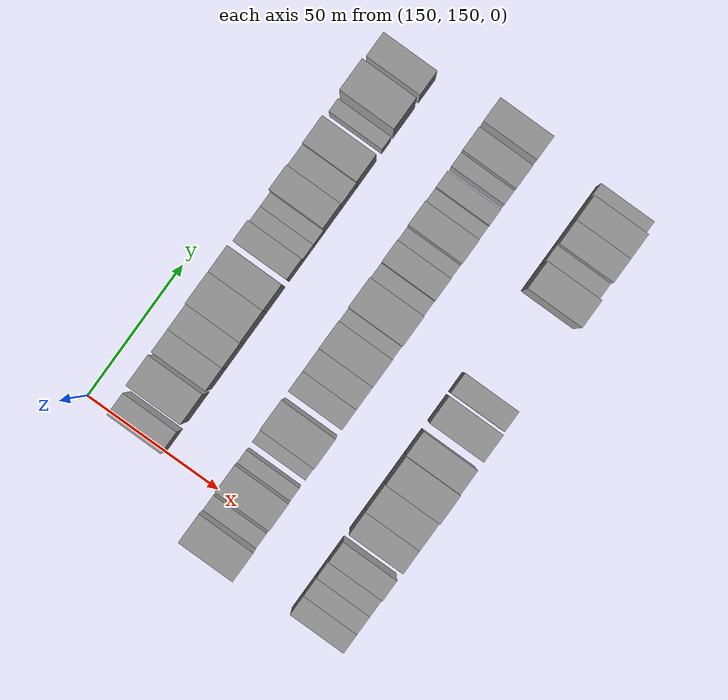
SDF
<sdf version="1.6">
 <world name="default">
  <model name="building_491">
   <static>1</static>
   <pose>170.0000 154.7294 0 0.000000 0.000000 0.000000</pose>
   <link name="link">
    <pose>0 0 9.00 0 0 0</pose>
    <collision name="collision"><geometry><box><size>20.0000 8.1048 18.0000</size></box></geometry></collision>
    <visual name="visual">
     <cast_shadows>0</cast_shadows>
     <geometry><box><size>20.0000 8.1048 18.0000</size></box></geometry>
     <material>
      <script>
       <uri>model://grey_wall/materials/scripts</uri>
       <uri>model://grey_wall/materials/textures</uri>
       <name>vrc/grey_wall</name>
      </script>
     </material>
    </visual>
   </link>
  </model>
  <model name="building_492">
   <static>1</static>
   <pose>170.0000 167.3906 0 0.000000 0.000000 0.000000</pose>
   <link name="link">
    <pose>0 0 12.00 0 0 0</pose>
    <collision name="collision"><geometry><box><size>20.0000 11.2178 24.0000</size></box></geometry></collision>
    <visual name="visual">
     <cast_shadows>0</cast_shadows>
     <geometry><box><size>20.0000 11.2178 24.0000</size></box></geometry>
     <material>
      <script>
       <uri>model://grey_wall/materials/scripts</uri>
       <uri>model://grey_wall/materials/textures</uri>
       <name>vrc/grey_wall</name>
      </script>
     </material>
    </visual>
   </link>
  </model>
  <model name="building_493">
   <static>1</static>
   <pose>170.0000 178.2123 0 0.000000 0.000000 0.000000</pose>
   <link name="link">
    <pose>0 0 10.50 0 0 0</pose>
    <collision name="collision"><geometry><box><size>20.0000 8.4255 21.0000</size></box></geometry></collision>
    <visual name="visual">
     <cast_shadows>0</cast_shadows>
     <geometry><box><size>20.0000 8.4255 21.0000</size></box></geometry>
     <material>
      <script>
       <uri>model://grey_wall/materials/scripts</uri>
       <uri>model://grey_wall/materials/textures</uri>
       <name>vrc/grey_wall</name>
      </script>
     </material>
    </visual>
   </link>
  </model>
  <model name="building_494">
   <static>1</static>
   <pose>170.0000 187.1427 0 0.000000 0.000000 0.000000</pose>
   <link name="link">
    <pose>0 0 10.50 0 0 0</pose>
    <collision name="collision"><geometry><box><size>20.0000 9.4354 21.0000</size></box></geometry></collision>
    <visual name="visual">
     <cast_shadows>0</cast_shadows>
     <geometry><box><size>20.0000 9.4354 21.0000</size></box></geometry>
     <material>
      <script>
       <uri>model://grey_wall/materials/scripts</uri>
       <uri>model://grey_wall/materials/textures</uri>
       <name>vrc/grey_wall</name>
      </script>
     </material>
    </visual>
   </link>
  </model>
  <model name="building_495">
   <static>1</static>
   <pose>170.0000 197.7175 0 0.000000 0.000000 0.000000</pose>
   <link name="link">
    <pose>0 0 12.00 0 0 0</pose>
    <collision name="collision"><geometry><box><size>20.0000 11.7142 24.0000</size></box></geometry></collision>
    <visual name="visual">
     <cast_shadows>0</cast_shadows>
     <geometry><box><size>20.0000 11.7142 24.0000</size></box></geometry>
     <material>
      <script>
       <uri>model://grey_wall/materials/scripts</uri>
       <uri>model://grey_wall/materials/textures</uri>
       <name>vrc/grey_wall</name>
      </script>
     </material>
    </visual>
   </link>
  </model>
  <model name="building_496">
   <static>1</static>
   <pose>170.0000 208.4007 0 0.000000 0.000000 0.000000</pose>
   <link name="link">
    <pose>0 0 12.00 0 0 0</pose>
    <collision name="collision"><geometry><box><size>20.0000 9.6523 24.0000</size></box></geometry></collision>
    <visual name="visual">
     <cast_shadows>0</cast_shadows>
     <geometry><box><size>20.0000 9.6523 24.0000</size></box></geometry>
     <material>
      <script>
       <uri>model://grey_wall/materials/scripts</uri>
       <uri>model://grey_wall/materials/textures</uri>
       <name>vrc/grey_wall</name>
      </script>
     </material>
    </visual>
   </link>
  </model>
  <model name="building_497">
   <static>1</static>
   <pose>170.0000 219.1140 0 0.000000 0.000000 0.000000</pose>
   <link name="link">
    <pose>0 0 9.00 0 0 0</pose>
    <collision name="collision"><geometry><box><size>20.0000 7.7743 18.0000</size></box></geometry></collision>
    <visual name="visual">
     <cast_shadows>0</cast_shadows>
     <geometry><box><size>20.0000 7.7743 18.0000</size></box></geometry>
     <material>
      <script>
       <uri>model://grey_wall/materials/scripts</uri>
       <uri>model://grey_wall/materials/textures</uri>
       <name>vrc/grey_wall</name>
      </script>
     </material>
    </visual>
   </link>
  </model>
  <model name="building_498">
   <static>1</static>
   <pose>170.0000 225.8451 0 0.000000 0.000000 0.000000</pose>
   <link name="link">
    <pose>0 0 6.00 0 0 0</pose>
    <collision name="collision"><geometry><box><size>20.0000 5.6880 12.0000</size></box></geometry></collision>
    <visual name="visual">
     <cast_shadows>0</cast_shadows>
     <geometry><box><size>20.0000 5.6880 12.0000</size></box></geometry>
     <material>
      <script>
       <uri>model://grey_wall/materials/scripts</uri>
       <uri>model://grey_wall/materials/textures</uri>
       <name>vrc/grey_wall</name>
      </script>
     </material>
    </visual>
   </link>
  </model>
  <model name="building_499">
   <static>1</static>
   <pose>170.0000 231.3426 0 0.000000 0.000000 0.000000</pose>
   <link name="link">
    <pose>0 0 6.00 0 0 0</pose>
    <collision name="collision"><geometry><box><size>20.0000 5.3070 12.0000</size></box></geometry></collision>
    <visual name="visual">
     <cast_shadows>0</cast_shadows>
     <geometry><box><size>20.0000 5.3070 12.0000</size></box></geometry>
     <material>
      <script>
       <uri>model://grey_wall/materials/scripts</uri>
       <uri>model://grey_wall/materials/textures</uri>
       <name>vrc/grey_wall</name>
      </script>
     </material>
    </visual>
   </link>
  </model>
  <model name="building_500">
   <static>1</static>
   <pose>170.0000 238.5682 0 0.000000 0.000000 0.000000</pose>
   <link name="link">
    <pose>0 0 10.50 0 0 0</pose>
    <collision name="collision"><geometry><box><size>20.0000 9.1442 21.0000</size></box></geometry></collision>
    <visual name="visual">
     <cast_shadows>0</cast_shadows>
     <geometry><box><size>20.0000 9.1442 21.0000</size></box></geometry>
     <material>
      <script>
       <uri>model://grey_wall/materials/scripts</uri>
       <uri>model://grey_wall/materials/textures</uri>
       <name>vrc/grey_wall</name>
      </script>
     </material>
    </visual>
   </link>
  </model>
  <model name="building_501">
   <static>1</static>
   <pose>170.0000 247.1421 0 0.000000 0.000000 0.000000</pose>
   <link name="link">
    <pose>0 0 9.00 0 0 0</pose>
    <collision name="collision"><geometry><box><size>20.0000 8.0035 18.0000</size></box></geometry></collision>
    <visual name="visual">
     <cast_shadows>0</cast_shadows>
     <geometry><box><size>20.0000 8.0035 18.0000</size></box></geometry>
     <material>
      <script>
       <uri>model://grey_wall/materials/scripts</uri>
       <uri>model://grey_wall/materials/textures</uri>
       <name>vrc/grey_wall</name>
      </script>
     </material>
    </visual>
   </link>
  </model>
  <model name="building_502">
   <static>1</static>
   <pose>170.0000 256.2318 0 0.000000 0.000000 0.000000</pose>
   <link name="link">
    <pose>0 0 10.50 0 0 0</pose>
    <collision name="collision"><geometry><box><size>20.0000 10.1759 21.0000</size></box></geometry></collision>
    <visual name="visual">
     <cast_shadows>0</cast_shadows>
     <geometry><box><size>20.0000 10.1759 21.0000</size></box></geometry>
     <material>
      <script>
       <uri>model://grey_wall/materials/scripts</uri>
       <uri>model://grey_wall/materials/textures</uri>
       <name>vrc/grey_wall</name>
      </script>
     </material>
    </visual>
   </link>
  </model>
  <model name="building_503">
   <static>1</static>
   <pose>170.0000 266.7391 0 0.000000 0.000000 0.000000</pose>
   <link name="link">
    <pose>0 0 6.00 0 0 0</pose>
    <collision name="collision"><geometry><box><size>20.0000 4.8388 12.0000</size></box></geometry></collision>
    <visual name="visual">
     <cast_shadows>0</cast_shadows>
     <geometry><box><size>20.0000 4.8388 12.0000</size></box></geometry>
     <material>
      <script>
       <uri>model://grey_wall/materials/scripts</uri>
       <uri>model://grey_wall/materials/textures</uri>
       <name>vrc/grey_wall</name>
      </script>
     </material>
    </visual>
   </link>
  </model>
  <model name="building_504">
   <static>1</static>
   <pose>170.0000 275.9370 0 0.000000 0.000000 0.000000</pose>
   <link name="link">
    <pose>0 0 12.00 0 0 0</pose>
    <collision name="collision"><geometry><box><size>20.0000 11.5570 24.0000</size></box></geometry></collision>
    <visual name="visual">
     <cast_shadows>0</cast_shadows>
     <geometry><box><size>20.0000 11.5570 24.0000</size></box></geometry>
     <material>
      <script>
       <uri>model://grey_wall/materials/scripts</uri>
       <uri>model://grey_wall/materials/textures</uri>
       <name>vrc/grey_wall</name>
      </script>
     </material>
    </visual>
   </link>
  </model>
  <model name="building_505">
   <static>1</static>
   <pose>170.0000 288.2011 0 0.000000 0.000000 0.000000</pose>
   <link name="link">
    <pose>0 0 9.00 0 0 0</pose>
    <collision name="collision"><geometry><box><size>20.0000 8.9712 18.0000</size></box></geometry></collision>
    <visual name="visual">
     <cast_shadows>0</cast_shadows>
     <geometry><box><size>20.0000 8.9712 18.0000</size></box></geometry>
     <material>
      <script>
       <uri>model://grey_wall/materials/scripts</uri>
       <uri>model://grey_wall/materials/textures</uri>
       <name>vrc/grey_wall</name>
      </script>
     </material>
    </visual>
   </link>
  </model>
  <model name="building_631">
   <static>1</static>
   <pose>210.0000 138.3344 0 0.000000 0.000000 0.000000</pose>
   <link name="link">
    <pose>0 0 12.00 0 0 0</pose>
    <collision name="collision"><geometry><box><size>20.0000 10.5798 24.0000</size></box></geometry></collision>
    <visual name="visual">
     <cast_shadows>0</cast_shadows>
     <geometry><box><size>20.0000 10.5798 24.0000</size></box></geometry>
     <material>
      <script>
       <uri>model://grey_wall/materials/scripts</uri>
       <uri>model://grey_wall/materials/textures</uri>
       <name>vrc/grey_wall</name>
      </script>
     </material>
    </visual>
   </link>
  </model>
  <model name="building_632">
   <static>1</static>
   <pose>210.0000 146.4017 0 0.000000 0.000000 0.000000</pose>
   <link name="link">
    <pose>0 0 6.00 0 0 0</pose>
    <collision name="collision"><geometry><box><size>20.0000 5.5547 12.0000</size></box></geometry></collision>
    <visual name="visual">
     <cast_shadows>0</cast_shadows>
     <geometry><box><size>20.0000 5.5547 12.0000</size></box></geometry>
     <material>
      <script>
       <uri>model://grey_wall/materials/scripts</uri>
       <uri>model://grey_wall/materials/textures</uri>
       <name>vrc/grey_wall</name>
      </script>
     </material>
    </visual>
   </link>
  </model>
  <model name="building_633">
   <static>1</static>
   <pose>210.0000 156.2569 0 0.000000 0.000000 0.000000</pose>
   <link name="link">
    <pose>0 0 10.50 0 0 0</pose>
    <collision name="collision"><geometry><box><size>20.0000 10.1557 21.0000</size></box></geometry></collision>
    <visual name="visual">
     <cast_shadows>0</cast_shadows>
     <geometry><box><size>20.0000 10.1557 21.0000</size></box></geometry>
     <material>
      <script>
       <uri>model://grey_wall/materials/scripts</uri>
       <uri>model://grey_wall/materials/textures</uri>
       <name>vrc/grey_wall</name>
      </script>
     </material>
    </visual>
   </link>
  </model>
  <model name="building_634">
   <static>1</static>
   <pose>210.0000 163.7623 0 0.000000 0.000000 0.000000</pose>
   <link name="link">
    <pose>0 0 6.00 0 0 0</pose>
    <collision name="collision"><geometry><box><size>20.0000 4.8551 12.0000</size></box></geometry></collision>
    <visual name="visual">
     <cast_shadows>0</cast_shadows>
     <geometry><box><size>20.0000 4.8551 12.0000</size></box></geometry>
     <material>
      <script>
       <uri>model://grey_wall/materials/scripts</uri>
       <uri>model://grey_wall/materials/textures</uri>
       <name>vrc/grey_wall</name>
      </script>
     </material>
    </visual>
   </link>
  </model>
  <model name="building_635">
   <static>1</static>
   <pose>210.0000 171.8020 0 0.000000 0.000000 0.000000</pose>
   <link name="link">
    <pose>0 0 6.00 0 0 0</pose>
    <collision name="collision"><geometry><box><size>20.0000 5.2244 12.0000</size></box></geometry></collision>
    <visual name="visual">
     <cast_shadows>0</cast_shadows>
     <geometry><box><size>20.0000 5.2244 12.0000</size></box></geometry>
     <material>
      <script>
       <uri>model://grey_wall/materials/scripts</uri>
       <uri>model://grey_wall/materials/textures</uri>
       <name>vrc/grey_wall</name>
      </script>
     </material>
    </visual>
   </link>
  </model>
  <model name="building_636">
   <static>1</static>
   <pose>210.0000 179.8913 0 0.000000 0.000000 0.000000</pose>
   <link name="link">
    <pose>0 0 12.00 0 0 0</pose>
    <collision name="collision"><geometry><box><size>20.0000 10.9542 24.0000</size></box></geometry></collision>
    <visual name="visual">
     <cast_shadows>0</cast_shadows>
     <geometry><box><size>20.0000 10.9542 24.0000</size></box></geometry>
     <material>
      <script>
       <uri>model://grey_wall/materials/scripts</uri>
       <uri>model://grey_wall/materials/textures</uri>
       <name>vrc/grey_wall</name>
      </script>
     </material>
    </visual>
   </link>
  </model>
  <model name="building_637">
   <static>1</static>
   <pose>210.0000 192.0999 0 0.000000 0.000000 0.000000</pose>
   <link name="link">
    <pose>0 0 9.00 0 0 0</pose>
    <collision name="collision"><geometry><box><size>20.0000 7.4629 18.0000</size></box></geometry></collision>
    <visual name="visual">
     <cast_shadows>0</cast_shadows>
     <geometry><box><size>20.0000 7.4629 18.0000</size></box></geometry>
     <material>
      <script>
       <uri>model://grey_wall/materials/scripts</uri>
       <uri>model://grey_wall/materials/textures</uri>
       <name>vrc/grey_wall</name>
      </script>
     </material>
    </visual>
   </link>
  </model>
  <model name="building_638">
   <static>1</static>
   <pose>210.0000 200.0499 0 0.000000 0.000000 0.000000</pose>
   <link name="link">
    <pose>0 0 9.00 0 0 0</pose>
    <collision name="collision"><geometry><box><size>20.0000 8.4372 18.0000</size></box></geometry></collision>
    <visual name="visual">
     <cast_shadows>0</cast_shadows>
     <geometry><box><size>20.0000 8.4372 18.0000</size></box></geometry>
     <material>
      <script>
       <uri>model://grey_wall/materials/scripts</uri>
       <uri>model://grey_wall/materials/textures</uri>
       <name>vrc/grey_wall</name>
      </script>
     </material>
    </visual>
   </link>
  </model>
  <model name="building_639">
   <static>1</static>
   <pose>210.0000 209.3535 0 0.000000 0.000000 0.000000</pose>
   <link name="link">
    <pose>0 0 10.50 0 0 0</pose>
    <collision name="collision"><geometry><box><size>20.0000 10.1700 21.0000</size></box></geometry></collision>
    <visual name="visual">
     <cast_shadows>0</cast_shadows>
     <geometry><box><size>20.0000 10.1700 21.0000</size></box></geometry>
     <material>
      <script>
       <uri>model://grey_wall/materials/scripts</uri>
       <uri>model://grey_wall/materials/textures</uri>
       <name>vrc/grey_wall</name>
      </script>
     </material>
    </visual>
   </link>
  </model>
  <model name="building_640">
   <static>1</static>
   <pose>210.0000 216.8835 0 0.000000 0.000000 0.000000</pose>
   <link name="link">
    <pose>0 0 6.00 0 0 0</pose>
    <collision name="collision"><geometry><box><size>20.0000 4.8900 12.0000</size></box></geometry></collision>
    <visual name="visual">
     <cast_shadows>0</cast_shadows>
     <geometry><box><size>20.0000 4.8900 12.0000</size></box></geometry>
     <material>
      <script>
       <uri>model://grey_wall/materials/scripts</uri>
       <uri>model://grey_wall/materials/textures</uri>
       <name>vrc/grey_wall</name>
      </script>
     </material>
    </visual>
   </link>
  </model>
  <model name="building_641">
   <static>1</static>
   <pose>210.0000 224.8542 0 0.000000 0.000000 0.000000</pose>
   <link name="link">
    <pose>0 0 12.00 0 0 0</pose>
    <collision name="collision"><geometry><box><size>20.0000 11.0516 24.0000</size></box></geometry></collision>
    <visual name="visual">
     <cast_shadows>0</cast_shadows>
     <geometry><box><size>20.0000 11.0516 24.0000</size></box></geometry>
     <material>
      <script>
       <uri>model://grey_wall/materials/scripts</uri>
       <uri>model://grey_wall/materials/textures</uri>
       <name>vrc/grey_wall</name>
      </script>
     </material>
    </visual>
   </link>
  </model>
  <model name="building_642">
   <static>1</static>
   <pose>210.0000 233.3496 0 0.000000 0.000000 0.000000</pose>
   <link name="link">
    <pose>0 0 6.00 0 0 0</pose>
    <collision name="collision"><geometry><box><size>20.0000 5.9392 12.0000</size></box></geometry></collision>
    <visual name="visual">
     <cast_shadows>0</cast_shadows>
     <geometry><box><size>20.0000 5.9392 12.0000</size></box></geometry>
     <material>
      <script>
       <uri>model://grey_wall/materials/scripts</uri>
       <uri>model://grey_wall/materials/textures</uri>
       <name>vrc/grey_wall</name>
      </script>
     </material>
    </visual>
   </link>
  </model>
  <model name="building_643">
   <static>1</static>
   <pose>210.0000 240.4221 0 0.000000 0.000000 0.000000</pose>
   <link name="link">
    <pose>0 0 9.00 0 0 0</pose>
    <collision name="collision"><geometry><box><size>20.0000 8.2057 18.0000</size></box></geometry></collision>
    <visual name="visual">
     <cast_shadows>0</cast_shadows>
     <geometry><box><size>20.0000 8.2057 18.0000</size></box></geometry>
     <material>
      <script>
       <uri>model://grey_wall/materials/scripts</uri>
       <uri>model://grey_wall/materials/textures</uri>
       <name>vrc/grey_wall</name>
      </script>
     </material>
    </visual>
   </link>
  </model>
  <model name="building_644">
   <static>1</static>
   <pose>210.0000 247.1738 0 0.000000 0.000000 0.000000</pose>
   <link name="link">
    <pose>0 0 6.00 0 0 0</pose>
    <collision name="collision"><geometry><box><size>20.0000 5.2976 12.0000</size></box></geometry></collision>
    <visual name="visual">
     <cast_shadows>0</cast_shadows>
     <geometry><box><size>20.0000 5.2976 12.0000</size></box></geometry>
     <material>
      <script>
       <uri>model://grey_wall/materials/scripts</uri>
       <uri>model://grey_wall/materials/textures</uri>
       <name>vrc/grey_wall</name>
      </script>
     </material>
    </visual>
   </link>
  </model>
  <model name="building_645">
   <static>1</static>
   <pose>210.0000 254.2770 0 0.000000 0.000000 0.000000</pose>
   <link name="link">
    <pose>0 0 10.50 0 0 0</pose>
    <collision name="collision"><geometry><box><size>20.0000 8.9088 21.0000</size></box></geometry></collision>
    <visual name="visual">
     <cast_shadows>0</cast_shadows>
     <geometry><box><size>20.0000 8.9088 21.0000</size></box></geometry>
     <material>
      <script>
       <uri>model://grey_wall/materials/scripts</uri>
       <uri>model://grey_wall/materials/textures</uri>
       <name>vrc/grey_wall</name>
      </script>
     </material>
    </visual>
   </link>
  </model>
  <model name="building_646">
   <static>1</static>
   <pose>210.0000 261.5825 0 0.000000 0.000000 0.000000</pose>
   <link name="link">
    <pose>0 0 6.00 0 0 0</pose>
    <collision name="collision"><geometry><box><size>20.0000 5.7023 12.0000</size></box></geometry></collision>
    <visual name="visual">
     <cast_shadows>0</cast_shadows>
     <geometry><box><size>20.0000 5.7023 12.0000</size></box></geometry>
     <material>
      <script>
       <uri>model://grey_wall/materials/scripts</uri>
       <uri>model://grey_wall/materials/textures</uri>
       <name>vrc/grey_wall</name>
      </script>
     </material>
    </visual>
   </link>
  </model>
  <model name="building_647">
   <static>1</static>
   <pose>210.0000 267.5010 0 0.000000 0.000000 0.000000</pose>
   <link name="link">
    <pose>0 0 7.50 0 0 0</pose>
    <collision name="collision"><geometry><box><size>20.0000 6.1347 15.0000</size></box></geometry></collision>
    <visual name="visual">
     <cast_shadows>0</cast_shadows>
     <geometry><box><size>20.0000 6.1347 15.0000</size></box></geometry>
     <material>
      <script>
       <uri>model://grey_wall/materials/scripts</uri>
       <uri>model://grey_wall/materials/textures</uri>
       <name>vrc/grey_wall</name>
      </script>
     </material>
    </visual>
   </link>
  </model>
  <model name="building_648">
   <static>1</static>
   <pose>210.0000 275.2144 0 0.000000 0.000000 0.000000</pose>
   <link name="link">
    <pose>0 0 6.00 0 0 0</pose>
    <collision name="collision"><geometry><box><size>20.0000 5.2921 12.0000</size></box></geometry></collision>
    <visual name="visual">
     <cast_shadows>0</cast_shadows>
     <geometry><box><size>20.0000 5.2921 12.0000</size></box></geometry>
     <material>
      <script>
       <uri>model://grey_wall/materials/scripts</uri>
       <uri>model://grey_wall/materials/textures</uri>
       <name>vrc/grey_wall</name>
      </script>
     </material>
    </visual>
   </link>
  </model>
  <model name="building_649">
   <static>1</static>
   <pose>210.0000 282.2214 0 0.000000 0.000000 0.000000</pose>
   <link name="link">
    <pose>0 0 9.00 0 0 0</pose>
    <collision name="collision"><geometry><box><size>20.0000 8.7218 18.0000</size></box></geometry></collision>
    <visual name="visual">
     <cast_shadows>0</cast_shadows>
     <geometry><box><size>20.0000 8.7218 18.0000</size></box></geometry>
     <material>
      <script>
       <uri>model://grey_wall/materials/scripts</uri>
       <uri>model://grey_wall/materials/textures</uri>
       <name>vrc/grey_wall</name>
      </script>
     </material>
    </visual>
   </link>
  </model>
  <model name="building_650">
   <static>1</static>
   <pose>210.0000 292.9753 0 0.000000 0.000000 0.000000</pose>
   <link name="link">
    <pose>0 0 9.00 0 0 0</pose>
    <collision name="collision"><geometry><box><size>20.0000 8.7861 18.0000</size></box></geometry></collision>
    <visual name="visual">
     <cast_shadows>0</cast_shadows>
     <geometry><box><size>20.0000 8.7861 18.0000</size></box></geometry>
     <material>
      <script>
       <uri>model://grey_wall/materials/scripts</uri>
       <uri>model://grey_wall/materials/textures</uri>
       <name>vrc/grey_wall</name>
      </script>
     </material>
    </visual>
   </link>
  </model>
  <model name="building_770">
   <static>1</static>
   <pose>250.0000 137.2701 0 0.000000 0.000000 0.000000</pose>
   <link name="link">
    <pose>0 0 7.50 0 0 0</pose>
    <collision name="collision"><geometry><box><size>20.0000 6.9520 15.0000</size></box></geometry></collision>
    <visual name="visual">
     <cast_shadows>0</cast_shadows>
     <geometry><box><size>20.0000 6.9520 15.0000</size></box></geometry>
     <material>
      <script>
       <uri>model://grey_wall/materials/scripts</uri>
       <uri>model://grey_wall/materials/textures</uri>
       <name>vrc/grey_wall</name>
      </script>
     </material>
    </visual>
   </link>
  </model>
  <model name="building_771">
   <static>1</static>
   <pose>250.0000 144.0779 0 0.000000 0.000000 0.000000</pose>
   <link name="link">
    <pose>0 0 7.50 0 0 0</pose>
    <collision name="collision"><geometry><box><size>20.0000 6.6635 15.0000</size></box></geometry></collision>
    <visual name="visual">
     <cast_shadows>0</cast_shadows>
     <geometry><box><size>20.0000 6.6635 15.0000</size></box></geometry>
     <material>
      <script>
       <uri>model://grey_wall/materials/scripts</uri>
       <uri>model://grey_wall/materials/textures</uri>
       <name>vrc/grey_wall</name>
      </script>
     </material>
    </visual>
   </link>
  </model>
  <model name="building_772">
   <static>1</static>
   <pose>250.0000 150.6025 0 0.000000 0.000000 0.000000</pose>
   <link name="link">
    <pose>0 0 7.50 0 0 0</pose>
    <collision name="collision"><geometry><box><size>20.0000 6.3857 15.0000</size></box></geometry></collision>
    <visual name="visual">
     <cast_shadows>0</cast_shadows>
     <geometry><box><size>20.0000 6.3857 15.0000</size></box></geometry>
     <material>
      <script>
       <uri>model://grey_wall/materials/scripts</uri>
       <uri>model://grey_wall/materials/textures</uri>
       <name>vrc/grey_wall</name>
      </script>
     </material>
    </visual>
   </link>
  </model>
  <model name="building_773">
   <static>1</static>
   <pose>250.0000 157.5710 0 0.000000 0.000000 0.000000</pose>
   <link name="link">
    <pose>0 0 9.00 0 0 0</pose>
    <collision name="collision"><geometry><box><size>20.0000 7.5514 18.0000</size></box></geometry></collision>
    <visual name="visual">
     <cast_shadows>0</cast_shadows>
     <geometry><box><size>20.0000 7.5514 18.0000</size></box></geometry>
     <material>
      <script>
       <uri>model://grey_wall/materials/scripts</uri>
       <uri>model://grey_wall/materials/textures</uri>
       <name>vrc/grey_wall</name>
      </script>
     </material>
    </visual>
   </link>
  </model>
  <model name="building_774">
   <static>1</static>
   <pose>250.0000 168.5610 0 0.000000 0.000000 0.000000</pose>
   <link name="link">
    <pose>0 0 10.50 0 0 0</pose>
    <collision name="collision"><geometry><box><size>20.0000 8.4285 21.0000</size></box></geometry></collision>
    <visual name="visual">
     <cast_shadows>0</cast_shadows>
     <geometry><box><size>20.0000 8.4285 21.0000</size></box></geometry>
     <material>
      <script>
       <uri>model://grey_wall/materials/scripts</uri>
       <uri>model://grey_wall/materials/textures</uri>
       <name>vrc/grey_wall</name>
      </script>
     </material>
    </visual>
   </link>
  </model>
  <model name="building_775">
   <static>1</static>
   <pose>250.0000 177.9125 0 0.000000 0.000000 0.000000</pose>
   <link name="link">
    <pose>0 0 10.50 0 0 0</pose>
    <collision name="collision"><geometry><box><size>20.0000 10.2744 21.0000</size></box></geometry></collision>
    <visual name="visual">
     <cast_shadows>0</cast_shadows>
     <geometry><box><size>20.0000 10.2744 21.0000</size></box></geometry>
     <material>
      <script>
       <uri>model://grey_wall/materials/scripts</uri>
       <uri>model://grey_wall/materials/textures</uri>
       <name>vrc/grey_wall</name>
      </script>
     </material>
    </visual>
   </link>
  </model>
  <model name="building_776">
   <static>1</static>
   <pose>250.0000 188.2983 0 0.000000 0.000000 0.000000</pose>
   <link name="link">
    <pose>0 0 12.00 0 0 0</pose>
    <collision name="collision"><geometry><box><size>20.0000 10.4972 24.0000</size></box></geometry></collision>
    <visual name="visual">
     <cast_shadows>0</cast_shadows>
     <geometry><box><size>20.0000 10.4972 24.0000</size></box></geometry>
     <material>
      <script>
       <uri>model://grey_wall/materials/scripts</uri>
       <uri>model://grey_wall/materials/textures</uri>
       <name>vrc/grey_wall</name>
      </script>
     </material>
    </visual>
   </link>
  </model>
  <model name="building_777">
   <static>1</static>
   <pose>250.0000 198.0419 0 0.000000 0.000000 0.000000</pose>
   <link name="link">
    <pose>0 0 10.50 0 0 0</pose>
    <collision name="collision"><geometry><box><size>20.0000 8.9900 21.0000</size></box></geometry></collision>
    <visual name="visual">
     <cast_shadows>0</cast_shadows>
     <geometry><box><size>20.0000 8.9900 21.0000</size></box></geometry>
     <material>
      <script>
       <uri>model://grey_wall/materials/scripts</uri>
       <uri>model://grey_wall/materials/textures</uri>
       <name>vrc/grey_wall</name>
      </script>
     </material>
    </visual>
   </link>
  </model>
  <model name="building_778">
   <static>1</static>
   <pose>250.0000 210.5770 0 0.000000 0.000000 0.000000</pose>
   <link name="link">
    <pose>0 0 10.50 0 0 0</pose>
    <collision name="collision"><geometry><box><size>20.0000 10.0803 21.0000</size></box></geometry></collision>
    <visual name="visual">
     <cast_shadows>0</cast_shadows>
     <geometry><box><size>20.0000 10.0803 21.0000</size></box></geometry>
     <material>
      <script>
       <uri>model://grey_wall/materials/scripts</uri>
       <uri>model://grey_wall/materials/textures</uri>
       <name>vrc/grey_wall</name>
      </script>
     </material>
    </visual>
   </link>
  </model>
  <model name="building_779">
   <static>1</static>
   <pose>250.0000 220.3262 0 0.000000 0.000000 0.000000</pose>
   <link name="link">
    <pose>0 0 9.00 0 0 0</pose>
    <collision name="collision"><geometry><box><size>20.0000 7.4180 18.0000</size></box></geometry></collision>
    <visual name="visual">
     <cast_shadows>0</cast_shadows>
     <geometry><box><size>20.0000 7.4180 18.0000</size></box></geometry>
     <material>
      <script>
       <uri>model://grey_wall/materials/scripts</uri>
       <uri>model://grey_wall/materials/textures</uri>
       <name>vrc/grey_wall</name>
      </script>
     </material>
    </visual>
   </link>
  </model>
  <model name="building_780">
   <static>1</static>
   <pose>250.0000 260.1758 0 0.000000 0.000000 0.000000</pose>
   <link name="link">
    <pose>0 0 12.00 0 0 0</pose>
    <collision name="collision"><geometry><box><size>20.0000 10.0938 24.0000</size></box></geometry></collision>
    <visual name="visual">
     <cast_shadows>0</cast_shadows>
     <geometry><box><size>20.0000 10.0938 24.0000</size></box></geometry>
     <material>
      <script>
       <uri>model://grey_wall/materials/scripts</uri>
       <uri>model://grey_wall/materials/textures</uri>
       <name>vrc/grey_wall</name>
      </script>
     </material>
    </visual>
   </link>
  </model>
  <model name="building_781">
   <static>1</static>
   <pose>250.0000 268.5075 0 0.000000 0.000000 0.000000</pose>
   <link name="link">
    <pose>0 0 7.50 0 0 0</pose>
    <collision name="collision"><geometry><box><size>20.0000 6.5697 15.0000</size></box></geometry></collision>
    <visual name="visual">
     <cast_shadows>0</cast_shadows>
     <geometry><box><size>20.0000 6.5697 15.0000</size></box></geometry>
     <material>
      <script>
       <uri>model://grey_wall/materials/scripts</uri>
       <uri>model://grey_wall/materials/textures</uri>
       <name>vrc/grey_wall</name>
      </script>
     </material>
    </visual>
   </link>
  </model>
  <model name="building_782">
   <static>1</static>
   <pose>250.0000 276.2031 0 0.000000 0.000000 0.000000</pose>
   <link name="link">
    <pose>0 0 10.50 0 0 0</pose>
    <collision name="collision"><geometry><box><size>20.0000 8.8215 21.0000</size></box></geometry></collision>
    <visual name="visual">
     <cast_shadows>0</cast_shadows>
     <geometry><box><size>20.0000 8.8215 21.0000</size></box></geometry>
     <material>
      <script>
       <uri>model://grey_wall/materials/scripts</uri>
       <uri>model://grey_wall/materials/textures</uri>
       <name>vrc/grey_wall</name>
      </script>
     </material>
    </visual>
   </link>
  </model>
  <model name="building_783">
   <static>1</static>
   <pose>250.0000 285.1504 0 0.000000 0.000000 0.000000</pose>
   <link name="link">
    <pose>0 0 10.50 0 0 0</pose>
    <collision name="collision"><geometry><box><size>20.0000 9.0730 21.0000</size></box></geometry></collision>
    <visual name="visual">
     <cast_shadows>0</cast_shadows>
     <geometry><box><size>20.0000 9.0730 21.0000</size></box></geometry>
     <material>
      <script>
       <uri>model://grey_wall/materials/scripts</uri>
       <uri>model://grey_wall/materials/textures</uri>
       <name>vrc/grey_wall</name>
      </script>
     </material>
    </visual>
   </link>
  </model>
  <model name="building_784">
   <static>1</static>
   <pose>250.0000 292.3974 0 0.000000 0.000000 0.000000</pose>
   <link name="link">
    <pose>0 0 6.00 0 0 0</pose>
    <collision name="collision"><geometry><box><size>20.0000 5.4211 12.0000</size></box></geometry></collision>
    <visual name="visual">
     <cast_shadows>0</cast_shadows>
     <geometry><box><size>20.0000 5.4211 12.0000</size></box></geometry>
     <material>
      <script>
       <uri>model://grey_wall/materials/scripts</uri>
       <uri>model://grey_wall/materials/textures</uri>
       <name>vrc/grey_wall</name>
      </script>
     </material>
    </visual>
   </link>
  </model>
 </world>
</sdf>
